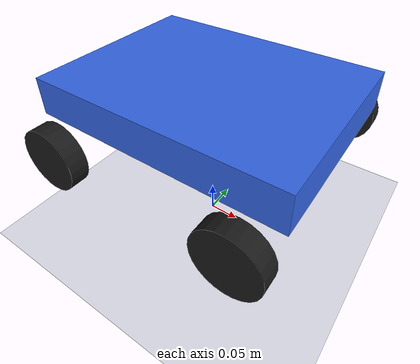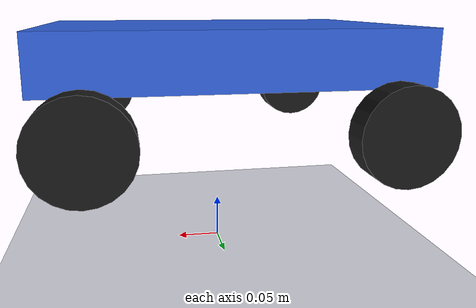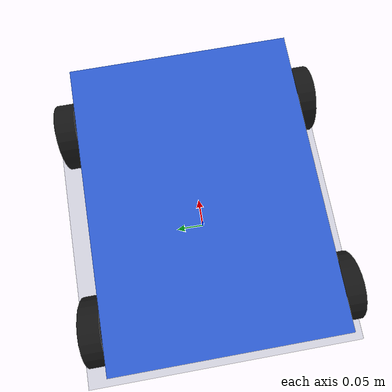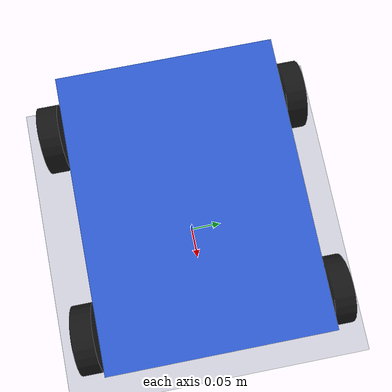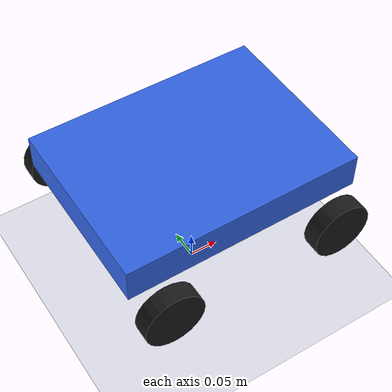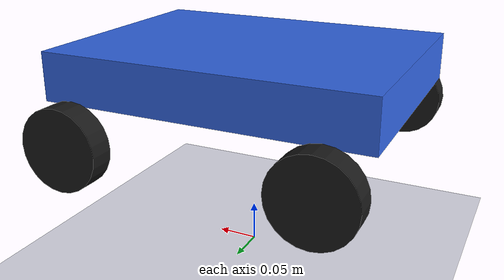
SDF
<?xml version='1.0'?>
<sdf version='1.9'>
  <world name='stable_world'>
    <!-- Gravity is ON -->
    <gravity>0 0 -9.81</gravity>

    <!-- Use tighter physics to reduce jitter/flip -->
    <physics name='dart' type='dart'>
      <max_step_size>0.001</max_step_size>
      <real_time_update_rate>1000</real_time_update_rate>
    </physics>

    <scene>
      <!-- Light background -->
      <ambient>0.7 0.7 0.7 1</ambient>
      <background>0.96 0.97 1.0 1</background>
      <shadows>true</shadows>
    </scene>

    <!-- Ground -->
    <model name='ground'>
      <static>true</static>
      <link name='ground_link'>
        <collision name='ground_col'>
          <geometry>
            <plane><normal>0 0 1</normal><size>200 200</size></plane>
          </geometry>
          <surface>
            <friction>
              <ode>
                <mu>1.2</mu><mu2>1.2</mu2>
              </ode>
            </friction>
          </surface>
        </collision>
        <visual name='ground_vis'>
          <geometry>
            <plane><normal>0 0 1</normal><size>200 200</size></plane>
          </geometry>
          <material>
            <ambient>0.9 0.9 0.95 1</ambient>
            <diffuse>0.9 0.9 0.95 1</diffuse>
          </material>
        </visual>
      </link>
    </model>

    <!-- Sun -->
    <light type='directional' name='sun'>
      <cast_shadows>true</cast_shadows>
      <pose>0 0 10 0 0 0</pose>
      <diffuse>0.9 0.9 0.9 1</diffuse>
      <specular>0.2 0.2 0.2 1</specular>
      <direction>-0.5 0.4 -1</direction>
    </light>

    <!-- Rover -->
    <model name='rover'>
      <pose>0 0 0.12 0 0 0</pose>
      <static>false</static>
      <self_collide>false</self_collide>

      <!-- Base: heavier, COM lowered, added decay to kill oscillations -->
      <link name='base_link'>
        <pose>0 0 0.12 0 0 0</pose>
        <inertial>
          <mass>8.0</mass>
          <!-- lower center of mass by 2 cm -->
          <pose>0 0 -0.02 0 0 0</pose>
          <!-- inertia of 0.40 x 0.30 x 0.06 m box (kg·m²) -->
          <inertia>
            <ixx>0.0624</ixx><ixy>0</ixy><ixz>0</ixz>
            <iyy>0.1090666667</iyy><iyz>0</iyz>
            <izz>0.1666666667</izz>
          </inertia>
        </inertial>
        <velocity_decay>
          <linear>0.05</linear>
          <angular>0.10</angular>
        </velocity_decay>
        <visual name='base_vis'>
          <geometry><box><size>0.40 0.30 0.06</size></box></geometry>
          <material>
            <ambient>0.2 0.4 0.9 1</ambient>
            <diffuse>0.2 0.4 0.9 1</diffuse>
          </material>
        </visual>
        <collision name='base_col'>
          <geometry><box><size>0.40 0.30 0.06</size></box></geometry>
          <surface>
            <contact>
              <stiffness>5e6</stiffness>
              <damping>1e4</damping>
              <restitution_coefficient>0.0</restitution_coefficient>
            </contact>
            <friction>
              <ode><mu>1.0</mu><mu2>1.0</mu2></ode>
            </friction>
          </surface>
        </collision>
      </link>

      <!-- Wheels: cylinder axis → +Y (roll=+90°). Placed outside base; tiny initial clearance. -->
      <!-- Wheel physical params chosen for stability: slightly heavier, realistic inertia, decay -->
      <!-- Common wheel geometry -->
      <!-- radius = 0.05, length(thickness) = 0.03 -->

      <link name='left_front_wheel'>
        <pose>0.15 0.18 0.051 0 0 0</pose>
        <self_collide>false</self_collide>
        <inertial>
          <mass>0.25</mass>
          <!-- Inertia of cylinder (axis = Y) -->
          <inertia>
            <!-- Ixx = Izz = (1/12)m(3r^2 + h^2) -->
            <ixx>0.000175</ixx><ixy>0</ixy><ixz>0</ixz>
            <!-- Iyy = (1/2) m r^2 -->
            <iyy>0.0003125</iyy><iyz>0</iyz>
            <izz>0.000175</izz>
          </inertia>
        </inertial>
        <velocity_decay><linear>0.02</linear><angular>0.02</angular></velocity_decay>
        <visual name='lf_vis'>
          <pose>0 0 0 1.5708 0 0</pose>
          <geometry><cylinder><radius>0.05</radius><length>0.03</length></cylinder></geometry>
          <material><ambient>0.1 0.1 0.1 1</ambient><diffuse>0.1 0.1 0.1 1</diffuse></material>
        </visual>
        <collision name='lf_col'>
          <pose>0 0 0 1.5708 0 0</pose>
          <geometry><cylinder><radius>0.05</radius><length>0.03</length></cylinder></geometry>
          <surface>
            <friction><ode><mu>1.2</mu><mu2>1.2</mu2></ode></friction>
            <contact><stiffness>5e6</stiffness><damping>1e4</damping></contact>
          </surface>
        </collision>
      </link>

      <link name='left_rear_wheel'>
        <pose>-0.15 0.18 0.051 0 0 0</pose>
        <self_collide>false</self_collide>
        <inertial>
          <mass>0.25</mass>
          <inertia>
            <ixx>0.000175</ixx><ixy>0</ixy><ixz>0</ixz>
            <iyy>0.0003125</iyy><iyz>0</iyz>
            <izz>0.000175</izz>
          </inertia>
        </inertial>
        <velocity_decay><linear>0.02</linear><angular>0.02</angular></velocity_decay>
        <visual name='lr_vis'>
          <pose>0 0 0 1.5708 0 0</pose>
          <geometry><cylinder><radius>0.05</radius><length>0.03</length></cylinder></geometry>
          <material><ambient>0.1 0.1 0.1 1</ambient><diffuse>0.1 0.1 0.1 1</diffuse></material>
        </visual>
        <collision name='lr_col'>
          <pose>0 0 0 1.5708 0 0</pose>
          <geometry><cylinder><radius>0.05</radius><length>0.03</length></cylinder></geometry>
          <surface>
            <friction><ode><mu>1.2</mu><mu2>1.2</mu2></ode></friction>
            <contact><stiffness>5e6</stiffness><damping>1e4</damping></contact>
          </surface>
        </collision>
      </link>

      <link name='right_front_wheel'>
        <pose>0.15 -0.18 0.051 0 0 0</pose>
        <self_collide>false</self_collide>
        <inertial>
          <mass>0.25</mass>
          <inertia>
            <ixx>0.000175</ixx><ixy>0</ixy><ixz>0</ixz>
            <iyy>0.0003125</iyy><iyz>0</iyz>
            <izz>0.000175</izz>
          </inertia>
        </inertial>
        <velocity_decay><linear>0.02</linear><angular>0.02</angular></velocity_decay>
        <visual name='rf_vis'>
          <pose>0 0 0 1.5708 0 0</pose>
          <geometry><cylinder><radius>0.05</radius><length>0.03</length></cylinder></geometry>
          <material><ambient>0.1 0.1 0.1 1</ambient><diffuse>0.1 0.1 0.1 1</diffuse></material>
        </visual>
        <collision name='rf_col'>
          <pose>0 0 0 1.5708 0 0</pose>
          <geometry><cylinder><radius>0.05</radius><length>0.03</length></cylinder></geometry>
          <surface>
            <friction><ode><mu>1.2</mu><mu2>1.2</mu2></ode></friction>
            <contact><stiffness>5e6</stiffness><damping>1e4</damping></contact>
          </surface>
        </collision>
      </link>

      <link name='right_rear_wheel'>
        <pose>-0.15 -0.18 0.051 0 0 0</pose>
        <self_collide>false</self_collide>
        <inertial>
          <mass>0.25</mass>
          <inertia>
            <ixx>0.000175</ixx><ixy>0</ixy><ixz>0</ixz>
            <iyy>0.0003125</iyy><iyz>0</iyz>
            <izz>0.000175</izz>
          </inertia>
        </inertial>
        <velocity_decay><linear>0.02</linear><angular>0.02</angular></velocity_decay>
        <visual name='rr_vis'>
          <pose>0 0 0 1.5708 0 0</pose>
          <geometry><cylinder><radius>0.05</radius><length>0.03</length></cylinder></geometry>
          <material><ambient>0.1 0.1 0.1 1</ambient><diffuse>0.1 0.1 0.1 1</diffuse></material>
        </visual>
        <collision name='rr_col'>
          <pose>0 0 0 1.5708 0 0</pose>
          <geometry><cylinder><radius>0.05</radius><length>0.03</length></cylinder></geometry>
          <surface>
            <friction><ode><mu>1.2</mu><mu2>1.2</mu2></ode></friction>
            <contact><stiffness>5e6</stiffness><damping>1e4</damping></contact>
          </surface>
        </collision>
      </link>

      <!-- Revolute joints: spin about +Y, with damping + friction + velocity/effort limits -->
      <joint name='left_front_wheel_joint' type='revolute'>
        <parent>base_link</parent><child>left_front_wheel</child>
        <axis>
          <xyz>0 1 0</xyz>
          <limit><lower>-1e16</lower><upper>1e16</upper><effort>15.0</effort><velocity>30.0</velocity></limit>
          <dynamics><damping>1.0</damping><friction>0.2</friction></dynamics>
        </axis>
      </joint>

      <joint name='left_rear_wheel_joint' type='revolute'>
        <parent>base_link</parent><child>left_rear_wheel</child>
        <axis>
          <xyz>0 1 0</xyz>
          <limit><lower>-1e16</lower><upper>1e16</upper><effort>15.0</effort><velocity>30.0</velocity></limit>
          <dynamics><damping>1.0</damping><friction>0.2</friction></dynamics>
        </axis>
      </joint>

      <joint name='right_front_wheel_joint' type='revolute'>
        <parent>base_link</parent><child>right_front_wheel</child>
        <axis>
          <xyz>0 1 0</xyz>
          <limit><lower>-1e16</lower><upper>1e16</upper><effort>15.0</effort><velocity>30.0</velocity></limit>
          <dynamics><damping>1.0</damping><friction>0.2</friction></dynamics>
        </axis>
      </joint>

      <joint name='right_rear_wheel_joint' type='revolute'>
        <parent>base_link</parent><child>right_rear_wheel</child>
        <axis>
          <xyz>0 1 0</xyz>
          <limit><lower>-1e16</lower><upper>1e16</upper><effort>15.0</effort><velocity>30.0</velocity></limit>
          <dynamics><damping>1.0</damping><friction>0.2</friction></dynamics>
        </axis>
      </joint>

      <!-- DiffDrive system (Ignition/Fortress) with speed/accel caps -->
      <plugin name="ignition::gazebo::systems::DiffDrive"
              filename="ignition-gazebo-diff-drive-system">
        <left_joint>left_front_wheel_joint</left_joint>
        <left_joint>left_rear_wheel_joint</left_joint>
        <right_joint>right_front_wheel_joint</right_joint>
        <right_joint>right_rear_wheel_joint</right_joint>

        <wheel_separation>0.36</wheel_separation>
        <wheel_radius>0.05</wheel_radius>

        <topic>/model/rover/cmd_vel</topic>
        <odom_topic>/model/rover/odometry</odom_topic>
        <odom_frame>odom</odom_frame>
        <robot_base_frame>base_link</robot_base_frame>
        <odom_publish_frequency>30</odom_publish_frequency>

        <!-- Caps to keep motion tame -->
        <max_linear_velocity>0.8</max_linear_velocity>
        <max_angular_velocity>1.5</max_angular_velocity>
        <max_linear_acceleration>0.5</max_linear_acceleration>
        <max_angular_acceleration>2.0</max_angular_acceleration>
        <cmd_timeout>0.25</cmd_timeout>
      </plugin>
    </model>
  </world>
</sdf>
